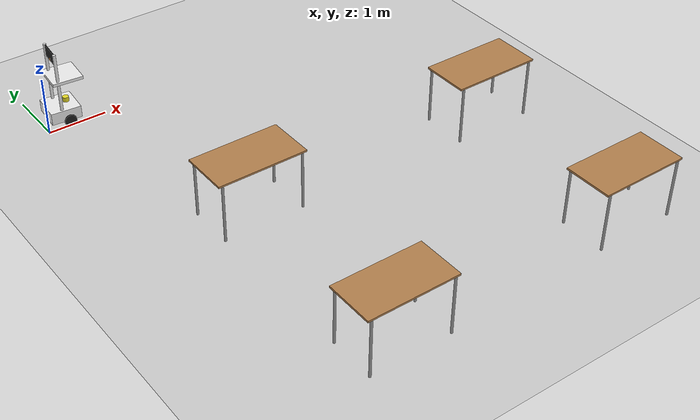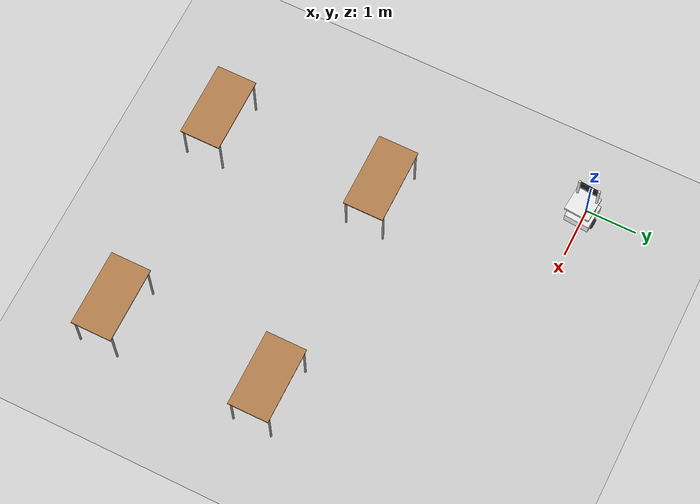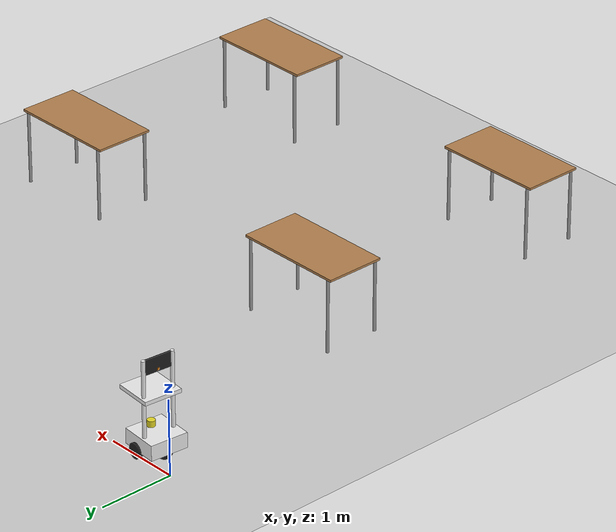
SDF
<sdf version="1.7">
 <world name="default">
  <light name="sun" type="directional">
   <pose>0 0 10 0 -0 0</pose>
   <diffuse>0.8 0.8 0.8 1</diffuse>
   <specular>0.2 0.2 0.2 1</specular>
   <attenuation>
    <range>1000</range>
    <constant>0.9</constant>
    <linear>0.01</linear>
    <quadratic>0.001</quadratic>
   </attenuation>
   <direction>-0.5 0.1 -0.9</direction>
   <spot><inner_angle>0</inner_angle><outer_angle>0</outer_angle><falloff>0</falloff></spot>
  </light>
  <model name="ground_plane">
   <static>1</static>
   <link name="link">
    <collision name="collision">
     <geometry><plane><normal>0 0 1</normal><size>100 100</size></plane></geometry>
     <surface>
      <contact><collide_bitmask>65535</collide_bitmask></contact>
      <friction><ode><mu>100</mu><mu2>50</mu2></ode></friction>
     </surface>
    </collision>
    <visual name="visual">
     <cast_shadows>0</cast_shadows>
     <geometry><plane><normal>0 0 1</normal><size>100 100</size></plane></geometry>
     <material>
      <script><uri>file://media/materials/scripts/gazebo.material</uri><name>Gazebo/Grey</name></script>
     </material>
    </visual>
   </link>
  </model>
  <gravity>0 0 -9.8</gravity>
  <magnetic_field>6e-06 2.3e-05 -4.2e-05</magnetic_field>
  <atmosphere type="adiabatic"/>
  <physics type="ode">
   <max_step_size>0.001</max_step_size>
   <real_time_factor>1</real_time_factor>
   <real_time_update_rate>1000</real_time_update_rate>
  </physics>
  <scene><ambient>0.4 0.4 0.4 1</ambient><background>0.7 0.7 0.7 1</background><shadows>1</shadows></scene>
  <spherical_coordinates>
   <surface_model>EARTH_WGS84</surface_model>
   <latitude_deg>0</latitude_deg>
   <longitude_deg>0</longitude_deg>
   <elevation>0</elevation>
   <heading_deg>0</heading_deg>
  </spherical_coordinates>
  <model name="my_bot">
   <link name="base_link">
    <inertial>
     <pose>0.0425 0 0.3825 0 -0 0</pose>
     <mass>2</mass>
     <inertia>
      <ixx>0.338966</ixx>
      <ixy>0</ixy>
      <ixz>0.0187625</ixz>
      <iyy>0.33277</iyy>
      <iyz>0</iyz>
      <izz>0.0772042</izz>
     </inertia>
    </inertial>
    <collision name="base_link_fixed_joint_lump__chassis_collision">
     <pose>0.05 0 0.1 0 -0 0</pose>
     <geometry><box><size>0.5 0.5 0.2</size></box></geometry>
    </collision>
    <collision name="base_link_fixed_joint_lump__caster_wheel_collision_1">
     <pose>0.2 0 0 0 -0 0</pose>
     <geometry><sphere><radius>0.1</radius></sphere></geometry>
     <surface><friction><ode><mu>0.001</mu><mu2>0.001</mu2></ode></friction></surface>
    </collision>
    <collision name="base_link_fixed_joint_lump__laser_frame_collision_2">
     <pose>-0.05 0 0.25 0 -0 0</pose>
     <geometry><cylinder><length>0.08</length><radius>0.05</radius></cylinder></geometry>
    </collision>
    <collision name="base_link_fixed_joint_lump__left_pole_collision_3">
     <pose>0.1 0.2 0.7 0 -0 0</pose>
     <geometry><cylinder><length>1</length><radius>0.025</radius></cylinder></geometry>
    </collision>
    <collision name="base_link_fixed_joint_lump__panel_collision_4">
     <pose>0.1 0 1.1 0 -0 0</pose>
     <geometry><box><size>0.35 0.15 0.2</size></box></geometry>
    </collision>
    <collision name="base_link_fixed_joint_lump__right_pole_collision_5">
     <pose>0.1 -0.2 0.7 0 -0 0</pose>
     <geometry><cylinder><length>1</length><radius>0.025</radius></cylinder></geometry>
    </collision>
    <collision name="base_link_fixed_joint_lump__tray_link_collision_6">
     <pose>-0.05 0 0.7 0 -0 0</pose>
     <geometry><box><size>0.5 0.5 0.05</size></box></geometry>
    </collision>
    <visual name="base_link_fixed_joint_lump__chassis_visual">
     <pose>0.05 0 0.1 0 -0 0</pose>
     <geometry><box><size>0.5 0.5 0.2</size></box></geometry>
     <material>
      <script><name>Gazebo/White</name><uri>file://media/materials/scripts/gazebo.material</uri></script>
     </material>
    </visual>
    <visual name="base_link_fixed_joint_lump__camera_link_visual_1">
     <pose>0.1 0 1.03 0 -0 3.14159</pose>
     <geometry><box><size>0.03 0.03 0.03</size></box></geometry>
     <material>
      <script><name>Gazebo/Orange</name><uri>file://media/materials/scripts/gazebo.material</uri></script>
     </material>
    </visual>
    <visual name="base_link_fixed_joint_lump__caster_wheel_visual_2">
     <pose>0.2 0 0 0 -0 0</pose>
     <geometry><sphere><radius>0.1</radius></sphere></geometry>
     <material>
      <script><name>Gazebo/Black</name><uri>file://media/materials/scripts/gazebo.material</uri></script>
     </material>
    </visual>
    <visual name="base_link_fixed_joint_lump__laser_frame_visual_3">
     <pose>-0.05 0 0.25 0 -0 0</pose>
     <geometry><cylinder><length>0.08</length><radius>0.05</radius></cylinder></geometry>
     <material>
      <script><name>Gazebo/Yellow</name><uri>file://media/materials/scripts/gazebo.material</uri></script>
     </material>
    </visual>
    <visual name="base_link_fixed_joint_lump__laser_frame_visual_4">
     <pose>-0.05 0 0.2 0 -0 0</pose>
     <geometry><cylinder><length>0.1</length><radius>0.01</radius></cylinder></geometry>
     <material>
      <script><name>Gazebo/Yellow</name><uri>file://media/materials/scripts/gazebo.material</uri></script>
     </material>
    </visual>
    <visual name="base_link_fixed_joint_lump__left_pole_visual_5">
     <pose>0.1 0.2 0.7 0 -0 0</pose>
     <geometry><cylinder><length>1</length><radius>0.025</radius></cylinder></geometry>
     <material>
      <script><name>Gazebo/White</name><uri>file://media/materials/scripts/gazebo.material</uri></script>
     </material>
    </visual>
    <visual name="base_link_fixed_joint_lump__panel_visual_6">
     <pose>0.1 0 1.1 0 -0 1.5708</pose>
     <geometry><box><size>0.35 0.015 0.2</size></box></geometry>
     <material>
      <script><name>Gazebo/Black</name><uri>file://media/materials/scripts/gazebo.material</uri></script>
     </material>
    </visual>
    <visual name="base_link_fixed_joint_lump__right_pole_visual_7">
     <pose>0.1 -0.2 0.7 0 -0 0</pose>
     <geometry><cylinder><length>1</length><radius>0.025</radius></cylinder></geometry>
     <material>
      <script><name>Gazebo/White</name><uri>file://media/materials/scripts/gazebo.material</uri></script>
     </material>
    </visual>
    <visual name="base_link_fixed_joint_lump__tray_link_visual_8">
     <pose>-0.05 0 0.7 0 -0 0</pose>
     <geometry><box><size>0.5 0.5 0.05</size></box></geometry>
     <material>
      <script><name>Gazebo/White</name><uri>file://media/materials/scripts/gazebo.material</uri></script>
     </material>
    </visual>
    <sensor name="camera" type="camera">
     <visualize>0</visualize>
     <update_rate>10</update_rate>
     <camera>
      <horizontal_fov>1.089</horizontal_fov>
      <image><format>R8G8B8</format><width>640</width><height>480</height></image>
      <clip><near>0.05</near><far>8</far></clip>
     </camera>
     <plugin name="camera_controller" filename="libgazebo_ros_camera.so">
      <frame_name>camera_link_optical</frame_name>
     </plugin>
     <pose>0.1 0 1.03 0 -0 3.14159</pose>
    </sensor>
    <sensor name="laser" type="ray">
     <visualize>0</visualize>
     <update_rate>10</update_rate>
     <ray>
      <scan>
       <horizontal>
        <samples>360</samples>
        <min_angle>-3.14</min_angle>
        <max_angle>3.14</max_angle>
        <resolution>1</resolution>
       </horizontal>
       <vertical><samples>1</samples><min_angle>0</min_angle><max_angle>0</max_angle></vertical>
      </scan>
      <range><min>0.3</min><max>12</max></range>
     </ray>
     <plugin name="laser_controller" filename="libgazebo_ros_ray_sensor.so">
      <ros><argument>~/out:=scan</argument></ros>
      <output_type>sensor_msgs/LaserScan</output_type>
      <frame_name>laser_frame</frame_name>
     </plugin>
     <pose>-0.05 0 0.25 0 -0 0</pose>
    </sensor>
   </link>
   <joint name="left_wheel_joint" type="revolute">
    <pose relative_to="base_link">0 0.25 0 -1.5708 0 0</pose>
    <parent>base_link</parent>
    <child>left_wheel</child>
    <axis>
     <xyz>0 0 1</xyz>
     <limit><lower>-1e+16</lower><upper>1e+16</upper></limit>
     <dynamics><spring_reference>0</spring_reference><spring_stiffness>0</spring_stiffness></dynamics>
    </axis>
   </joint>
   <link name="left_wheel">
    <pose relative_to="left_wheel_joint">0 0 0 0 -0 0</pose>
    <inertial>
     <mass>0.1</mass>
     <inertia>
      <ixx>0.000270833</ixx>
      <ixy>0</ixy>
      <ixz>0</ixz>
      <iyy>0.000270833</iyy>
      <iyz>0</iyz>
      <izz>0.0005</izz>
     </inertia>
    </inertial>
    <collision name="left_wheel_collision">
     <geometry><cylinder><length>0.05</length><radius>0.1</radius></cylinder></geometry>
    </collision>
    <visual name="left_wheel_visual">
     <geometry><cylinder><length>0.05</length><radius>0.1</radius></cylinder></geometry>
     <material>
      <script><name>Gazebo/Black</name><uri>file://media/materials/scripts/gazebo.material</uri></script>
     </material>
    </visual>
   </link>
   <joint name="right_wheel_joint" type="revolute">
    <pose relative_to="base_link">0 -0.25 0 1.5708 -0 0</pose>
    <parent>base_link</parent>
    <child>right_wheel</child>
    <axis>
     <xyz>0 0 1</xyz>
     <limit><lower>-1e+16</lower><upper>1e+16</upper></limit>
     <dynamics><spring_reference>0</spring_reference><spring_stiffness>0</spring_stiffness></dynamics>
    </axis>
   </joint>
   <link name="right_wheel">
    <pose relative_to="right_wheel_joint">0 0 0 0 -0 0</pose>
    <inertial>
     <mass>0.1</mass>
     <inertia>
      <ixx>0.000270833</ixx>
      <ixy>0</ixy>
      <ixz>0</ixz>
      <iyy>0.000270833</iyy>
      <iyz>0</iyz>
      <izz>0.0005</izz>
     </inertia>
    </inertial>
    <collision name="right_wheel_collision">
     <geometry><cylinder><length>0.05</length><radius>0.1</radius></cylinder></geometry>
    </collision>
    <visual name="right_wheel_visual">
     <geometry><cylinder><length>0.05</length><radius>0.1</radius></cylinder></geometry>
     <material>
      <script><name>Gazebo/Black</name><uri>file://media/materials/scripts/gazebo.material</uri></script>
     </material>
    </visual>
   </link>
   <static>0</static>
   <plugin name="diff_drive" filename="libgazebo_ros_diff_drive.so">
    <left_joint>left_wheel_joint</left_joint>
    <right_joint>right_wheel_joint</right_joint>
    <wheel_separation>0.297</wheel_separation>
    <wheel_diameter>0.066</wheel_diameter>
    <max_wheel_torque>200</max_wheel_torque>
    <max_wheel_acceleration>10.0</max_wheel_acceleration>
    <odometry_frame>odom</odometry_frame>
    <robot_base_frame>base_link</robot_base_frame>
    <publish_odom>1</publish_odom>
    <publish_odom_tf>1</publish_odom_tf>
    <publish_wheel_tf>1</publish_wheel_tf>
   </plugin>
   <pose>0.292479 -0.016116 0.289797 0 -1.6e-05 3.05281</pose>
  </model>
  <model name="table">
   <static>1</static>
   <link name="link">
    <collision name="surface">
     <pose>0 0 1 0 -0 0</pose>
     <geometry><box><size>1.5 0.8 0.03</size></box></geometry>
     <surface><friction><ode><mu>0.6</mu><mu2>0.6</mu2></ode></friction></surface>
    </collision>
    <visual name="visual1">
     <pose>0 0 1 0 -0 0</pose>
     <geometry><box><size>1.5 0.8 0.03</size></box></geometry>
     <material>
      <script><uri>file://media/materials/scripts/gazebo.material</uri><name>Gazebo/Wood</name></script>
     </material>
    </visual>
    <collision name="front_left_leg">
     <pose>0.68 0.38 0.5 0 -0 0</pose>
     <geometry><cylinder><radius>0.02</radius><length>1</length></cylinder></geometry>
    </collision>
    <visual name="front_left_leg">
     <pose>0.68 0.38 0.5 0 -0 0</pose>
     <geometry><cylinder><radius>0.02</radius><length>1</length></cylinder></geometry>
     <material>
      <script><uri>file://media/materials/scripts/gazebo.material</uri><name>Gazebo/Grey</name></script>
     </material>
    </visual>
    <collision name="front_right_leg">
     <pose>0.68 -0.38 0.5 0 -0 0</pose>
     <geometry><cylinder><radius>0.02</radius><length>1</length></cylinder></geometry>
    </collision>
    <visual name="front_right_leg">
     <pose>0.68 -0.38 0.5 0 -0 0</pose>
     <geometry><cylinder><radius>0.02</radius><length>1</length></cylinder></geometry>
     <material>
      <script><uri>file://media/materials/scripts/gazebo.material</uri><name>Gazebo/Grey</name></script>
     </material>
    </visual>
    <collision name="back_right_leg">
     <pose>-0.68 -0.38 0.5 0 -0 0</pose>
     <geometry><cylinder><radius>0.02</radius><length>1</length></cylinder></geometry>
    </collision>
    <visual name="back_right_leg">
     <pose>-0.68 -0.38 0.5 0 -0 0</pose>
     <geometry><cylinder><radius>0.02</radius><length>1</length></cylinder></geometry>
     <material>
      <script><uri>file://media/materials/scripts/gazebo.material</uri><name>Gazebo/Grey</name></script>
     </material>
    </visual>
    <collision name="back_left_leg">
     <pose>-0.68 0.38 0.5 0 -0 0</pose>
     <geometry><cylinder><radius>0.02</radius><length>1</length></cylinder></geometry>
    </collision>
    <visual name="back_left_leg">
     <pose>-0.68 0.38 0.5 0 -0 0</pose>
     <geometry><cylinder><radius>0.02</radius><length>1</length></cylinder></geometry>
     <material>
      <script><uri>file://media/materials/scripts/gazebo.material</uri><name>Gazebo/Grey</name></script>
     </material>
    </visual>
   </link>
   <pose>1.50351 -3.551 0 0 -0 0</pose>
  </model>
  <model name="table_0">
   <static>1</static>
   <link name="link">
    <collision name="surface">
     <pose>0 0 1 0 -0 0</pose>
     <geometry><box><size>1.5 0.8 0.03</size></box></geometry>
     <surface><friction><ode><mu>0.6</mu><mu2>0.6</mu2></ode></friction></surface>
    </collision>
    <visual name="visual1">
     <pose>0 0 1 0 -0 0</pose>
     <geometry><box><size>1.5 0.8 0.03</size></box></geometry>
     <material>
      <script><uri>file://media/materials/scripts/gazebo.material</uri><name>Gazebo/Wood</name></script>
     </material>
    </visual>
    <collision name="front_left_leg">
     <pose>0.68 0.38 0.5 0 -0 0</pose>
     <geometry><cylinder><radius>0.02</radius><length>1</length></cylinder></geometry>
    </collision>
    <visual name="front_left_leg">
     <pose>0.68 0.38 0.5 0 -0 0</pose>
     <geometry><cylinder><radius>0.02</radius><length>1</length></cylinder></geometry>
     <material>
      <script><uri>file://media/materials/scripts/gazebo.material</uri><name>Gazebo/Grey</name></script>
     </material>
    </visual>
    <collision name="front_right_leg">
     <pose>0.68 -0.38 0.5 0 -0 0</pose>
     <geometry><cylinder><radius>0.02</radius><length>1</length></cylinder></geometry>
    </collision>
    <visual name="front_right_leg">
     <pose>0.68 -0.38 0.5 0 -0 0</pose>
     <geometry><cylinder><radius>0.02</radius><length>1</length></cylinder></geometry>
     <material>
      <script><uri>file://media/materials/scripts/gazebo.material</uri><name>Gazebo/Grey</name></script>
     </material>
    </visual>
    <collision name="back_right_leg">
     <pose>-0.68 -0.38 0.5 0 -0 0</pose>
     <geometry><cylinder><radius>0.02</radius><length>1</length></cylinder></geometry>
    </collision>
    <visual name="back_right_leg">
     <pose>-0.68 -0.38 0.5 0 -0 0</pose>
     <geometry><cylinder><radius>0.02</radius><length>1</length></cylinder></geometry>
     <material>
      <script><uri>file://media/materials/scripts/gazebo.material</uri><name>Gazebo/Grey</name></script>
     </material>
    </visual>
    <collision name="back_left_leg">
     <pose>-0.68 0.38 0.5 0 -0 0</pose>
     <geometry><cylinder><radius>0.02</radius><length>1</length></cylinder></geometry>
    </collision>
    <visual name="back_left_leg">
     <pose>-0.68 0.38 0.5 0 -0 0</pose>
     <geometry><cylinder><radius>0.02</radius><length>1</length></cylinder></geometry>
     <material>
      <script><uri>file://media/materials/scripts/gazebo.material</uri><name>Gazebo/Grey</name></script>
     </material>
    </visual>
   </link>
   <pose>5.83595 -3.65855 0 0 -0 0</pose>
  </model>
  <model name="table_1">
   <static>1</static>
   <link name="link">
    <collision name="surface">
     <pose>0 0 1 0 -0 0</pose>
     <geometry><box><size>1.5 0.8 0.03</size></box></geometry>
     <surface><friction><ode><mu>0.6</mu><mu2>0.6</mu2></ode></friction></surface>
    </collision>
    <visual name="visual1">
     <pose>0 0 1 0 -0 0</pose>
     <geometry><box><size>1.5 0.8 0.03</size></box></geometry>
     <material>
      <script><uri>file://media/materials/scripts/gazebo.material</uri><name>Gazebo/Wood</name></script>
     </material>
    </visual>
    <collision name="front_left_leg">
     <pose>0.68 0.38 0.5 0 -0 0</pose>
     <geometry><cylinder><radius>0.02</radius><length>1</length></cylinder></geometry>
    </collision>
    <visual name="front_left_leg">
     <pose>0.68 0.38 0.5 0 -0 0</pose>
     <geometry><cylinder><radius>0.02</radius><length>1</length></cylinder></geometry>
     <material>
      <script><uri>file://media/materials/scripts/gazebo.material</uri><name>Gazebo/Grey</name></script>
     </material>
    </visual>
    <collision name="front_right_leg">
     <pose>0.68 -0.38 0.5 0 -0 0</pose>
     <geometry><cylinder><radius>0.02</radius><length>1</length></cylinder></geometry>
    </collision>
    <visual name="front_right_leg">
     <pose>0.68 -0.38 0.5 0 -0 0</pose>
     <geometry><cylinder><radius>0.02</radius><length>1</length></cylinder></geometry>
     <material>
      <script><uri>file://media/materials/scripts/gazebo.material</uri><name>Gazebo/Grey</name></script>
     </material>
    </visual>
    <collision name="back_right_leg">
     <pose>-0.68 -0.38 0.5 0 -0 0</pose>
     <geometry><cylinder><radius>0.02</radius><length>1</length></cylinder></geometry>
    </collision>
    <visual name="back_right_leg">
     <pose>-0.68 -0.38 0.5 0 -0 0</pose>
     <geometry><cylinder><radius>0.02</radius><length>1</length></cylinder></geometry>
     <material>
      <script><uri>file://media/materials/scripts/gazebo.material</uri><name>Gazebo/Grey</name></script>
     </material>
    </visual>
    <collision name="back_left_leg">
     <pose>-0.68 0.38 0.5 0 -0 0</pose>
     <geometry><cylinder><radius>0.02</radius><length>1</length></cylinder></geometry>
    </collision>
    <visual name="back_left_leg">
     <pose>-0.68 0.38 0.5 0 -0 0</pose>
     <geometry><cylinder><radius>0.02</radius><length>1</length></cylinder></geometry>
     <material>
      <script><uri>file://media/materials/scripts/gazebo.material</uri><name>Gazebo/Grey</name></script>
     </material>
    </visual>
   </link>
   <pose>1.53769 -6.89273 0 0 -0 0</pose>
  </model>
  <model name="table_2">
   <static>1</static>
   <link name="link">
    <collision name="surface">
     <pose>0 0 1 0 -0 0</pose>
     <geometry><box><size>1.5 0.8 0.03</size></box></geometry>
     <surface><friction><ode><mu>0.6</mu><mu2>0.6</mu2></ode></friction></surface>
    </collision>
    <visual name="visual1">
     <pose>0 0 1 0 -0 0</pose>
     <geometry><box><size>1.5 0.8 0.03</size></box></geometry>
     <material>
      <script><uri>file://media/materials/scripts/gazebo.material</uri><name>Gazebo/Wood</name></script>
     </material>
    </visual>
    <collision name="front_left_leg">
     <pose>0.68 0.38 0.5 0 -0 0</pose>
     <geometry><cylinder><radius>0.02</radius><length>1</length></cylinder></geometry>
    </collision>
    <visual name="front_left_leg">
     <pose>0.68 0.38 0.5 0 -0 0</pose>
     <geometry><cylinder><radius>0.02</radius><length>1</length></cylinder></geometry>
     <material>
      <script><uri>file://media/materials/scripts/gazebo.material</uri><name>Gazebo/Grey</name></script>
     </material>
    </visual>
    <collision name="front_right_leg">
     <pose>0.68 -0.38 0.5 0 -0 0</pose>
     <geometry><cylinder><radius>0.02</radius><length>1</length></cylinder></geometry>
    </collision>
    <visual name="front_right_leg">
     <pose>0.68 -0.38 0.5 0 -0 0</pose>
     <geometry><cylinder><radius>0.02</radius><length>1</length></cylinder></geometry>
     <material>
      <script><uri>file://media/materials/scripts/gazebo.material</uri><name>Gazebo/Grey</name></script>
     </material>
    </visual>
    <collision name="back_right_leg">
     <pose>-0.68 -0.38 0.5 0 -0 0</pose>
     <geometry><cylinder><radius>0.02</radius><length>1</length></cylinder></geometry>
    </collision>
    <visual name="back_right_leg">
     <pose>-0.68 -0.38 0.5 0 -0 0</pose>
     <geometry><cylinder><radius>0.02</radius><length>1</length></cylinder></geometry>
     <material>
      <script><uri>file://media/materials/scripts/gazebo.material</uri><name>Gazebo/Grey</name></script>
     </material>
    </visual>
    <collision name="back_left_leg">
     <pose>-0.68 0.38 0.5 0 -0 0</pose>
     <geometry><cylinder><radius>0.02</radius><length>1</length></cylinder></geometry>
    </collision>
    <visual name="back_left_leg">
     <pose>-0.68 0.38 0.5 0 -0 0</pose>
     <geometry><cylinder><radius>0.02</radius><length>1</length></cylinder></geometry>
     <material>
      <script><uri>file://media/materials/scripts/gazebo.material</uri><name>Gazebo/Grey</name></script>
     </material>
    </visual>
   </link>
   <pose>5.72346 -6.85819 -0 0 -0 0</pose>
  </model>
 </world>
</sdf>
